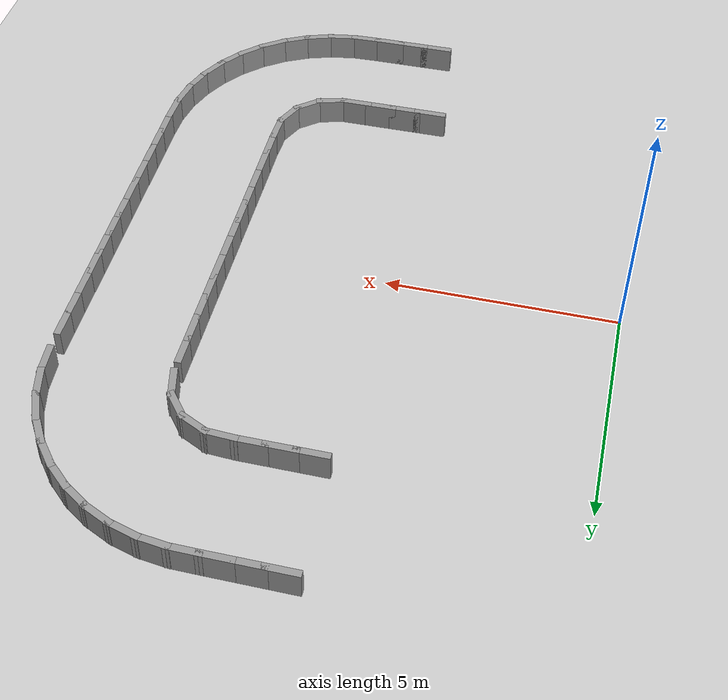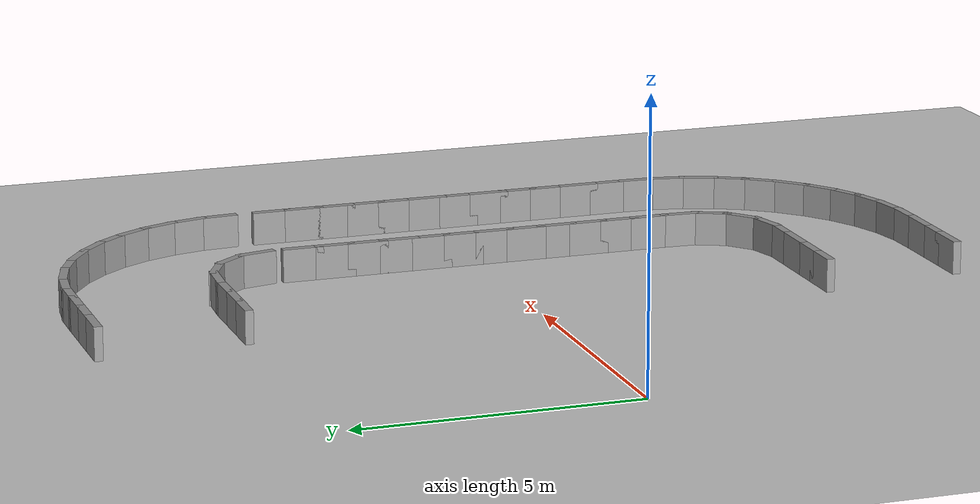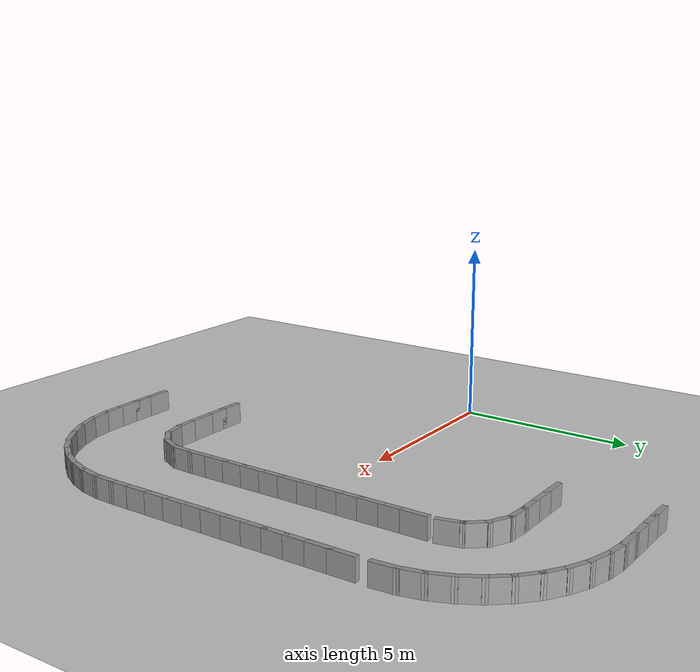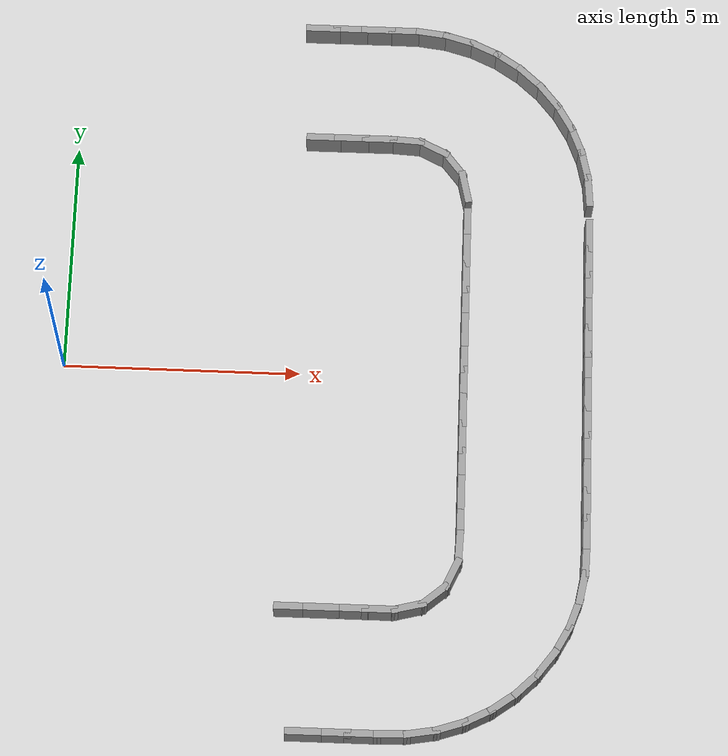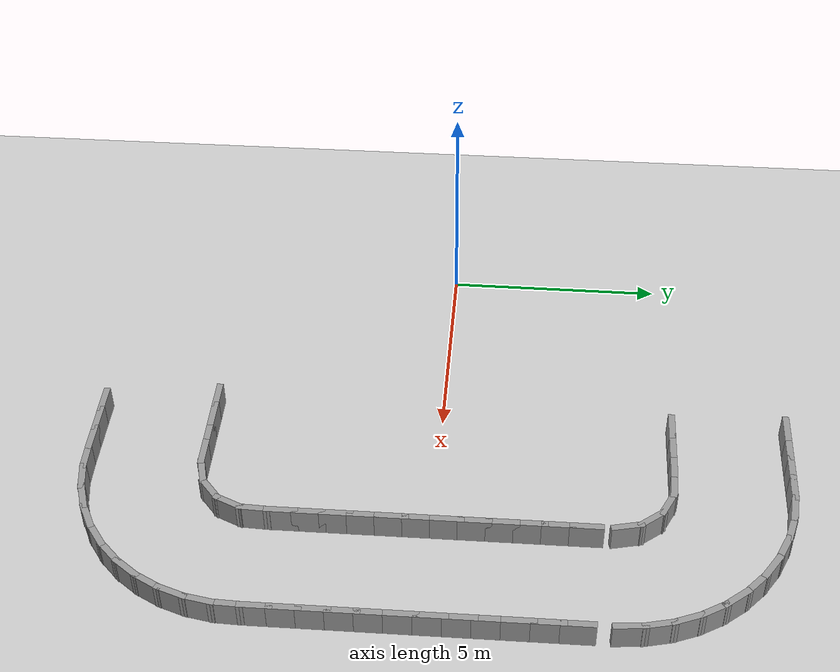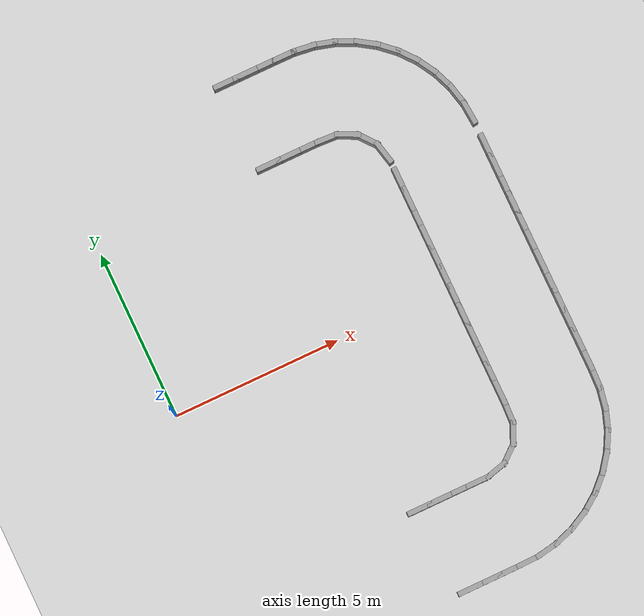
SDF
<sdf version="1.7">
 <world name="default">
  <model name="ground_plane">
   <static>1</static>
   <link name="link">
    <collision name="collision">
     <geometry><plane><normal>0 0 1</normal><size>100 100</size></plane></geometry>
     <surface><friction><ode><mu>100</mu><mu2>50</mu2></ode></friction></surface>
    </collision>
    <visual name="visual">
     <cast_shadows>0</cast_shadows>
     <geometry><plane><normal>0 0 1</normal><size>100 100</size></plane></geometry>
     <material>
      <script><uri>file://media/materials/scripts/gazebo.material</uri><name>Gazebo/Grey</name></script>
     </material>
    </visual>
   </link>
  </model>
  <model name="rand_rrect_02">
   <link name="Wall_0">
    <collision name="Wall_0_Collision">
     <geometry><box><size>0.7450 0.1500 0.6000</size></box></geometry>
     <pose>0 0 0.3000 0 -0 0</pose>
    </collision>
    <visual name="Wall_0_Visual">
     <pose>0 0 0.3000 0 -0 0</pose>
     <geometry><box><size>0.7450 0.1500 0.6000</size></box></geometry>
     <material>
      <script><uri>file://media/materials/scripts/gazebo.material</uri><name>Gazebo/Grey</name></script>
      <ambient>1 1 1 1</ambient>
     </material>
    </visual>
    <pose>8.3819 4.1988 0 0 -0 1.79474</pose>
   </link>
   <link name="Wall_1">
    <collision name="Wall_1_Collision">
     <geometry><box><size>0.7450 0.1500 0.6000</size></box></geometry>
     <pose>0 0 0.3000 0 -0 0</pose>
    </collision>
    <visual name="Wall_1_Visual">
     <pose>0 0 0.3000 0 -0 0</pose>
     <geometry><box><size>0.7450 0.1500 0.6000</size></box></geometry>
     <material>
      <script><uri>file://media/materials/scripts/gazebo.material</uri><name>Gazebo/Grey</name></script>
      <ambient>1 1 1 1</ambient>
     </material>
    </visual>
    <pose>8.1306 4.7217 0 0 -0 2.24261</pose>
   </link>
   <link name="Wall_2">
    <collision name="Wall_2_Collision">
     <geometry><box><size>0.7450 0.1500 0.6000</size></box></geometry>
     <pose>0 0 0.3000 0 -0 0</pose>
    </collision>
    <visual name="Wall_2_Visual">
     <pose>0 0 0.3000 0 -0 0</pose>
     <geometry><box><size>0.7450 0.1500 0.6000</size></box></geometry>
     <material>
      <script><uri>file://media/materials/scripts/gazebo.material</uri><name>Gazebo/Grey</name></script>
      <ambient>1 1 1 1</ambient>
     </material>
    </visual>
    <pose>7.6777 5.0842 0 0 -0 2.69049</pose>
   </link>
   <link name="Wall_3">
    <collision name="Wall_3_Collision">
     <geometry><box><size>0.7484 0.1500 0.6000</size></box></geometry>
     <pose>0 0 0.3000 0 -0 0</pose>
    </collision>
    <visual name="Wall_3_Visual">
     <pose>0 0 0.3000 0 -0 0</pose>
     <geometry><box><size>0.7484 0.1500 0.6000</size></box></geometry>
     <material>
      <script><uri>file://media/materials/scripts/gazebo.material</uri><name>Gazebo/Grey</name></script>
      <ambient>1 1 1 1</ambient>
     </material>
    </visual>
    <pose>7.1113 5.2311 0 0 -0 3.08404</pose>
   </link>
   <link name="Wall_4">
    <collision name="Wall_4_Collision">
     <geometry><box><size>0.7500 0.1500 0.6000</size></box></geometry>
     <pose>0 0 0.3000 0 -0 0</pose>
    </collision>
    <visual name="Wall_4_Visual">
     <pose>0 0 0.3000 0 -0 0</pose>
     <geometry><box><size>0.7500 0.1500 0.6000</size></box></geometry>
     <material>
      <script><uri>file://media/materials/scripts/gazebo.material</uri><name>Gazebo/Grey</name></script>
      <ambient>1 1 1 1</ambient>
     </material>
    </visual>
    <pose>6.5126 5.2483 0 0 -0 3.14159</pose>
   </link>
   <link name="Wall_5">
    <collision name="Wall_5_Collision">
     <geometry><box><size>0.7500 0.1500 0.6000</size></box></geometry>
     <pose>0 0 0.3000 0 -0 0</pose>
    </collision>
    <visual name="Wall_5_Visual">
     <pose>0 0 0.3000 0 -0 0</pose>
     <geometry><box><size>0.7500 0.1500 0.6000</size></box></geometry>
     <material>
      <script><uri>file://media/materials/scripts/gazebo.material</uri><name>Gazebo/Grey</name></script>
      <ambient>1 1 1 1</ambient>
     </material>
    </visual>
    <pose>5.9126 5.2483 0 0 -0 3.14159</pose>
   </link>
   <link name="Wall_6">
    <collision name="Wall_6_Collision">
     <geometry><box><size>0.7500 0.1500 0.6000</size></box></geometry>
     <pose>0 0 0.3000 0 -0 0</pose>
    </collision>
    <visual name="Wall_6_Visual">
     <pose>0 0 0.3000 0 -0 0</pose>
     <geometry><box><size>0.7500 0.1500 0.6000</size></box></geometry>
     <material>
      <script><uri>file://media/materials/scripts/gazebo.material</uri><name>Gazebo/Grey</name></script>
      <ambient>1 1 1 1</ambient>
     </material>
    </visual>
    <pose>5.3126 5.2483 0 0 -0 3.14159</pose>
   </link>
   <link name="Wall_67">
    <collision name="Wall_67_Collision">
     <geometry><box><size>0.7500 0.1500 0.6000</size></box></geometry>
     <pose>0 0 0.3000 0 -0 0</pose>
    </collision>
    <visual name="Wall_67_Visual">
     <pose>0 0 0.3000 0 -0 0</pose>
     <geometry><box><size>0.7500 0.1500 0.6000</size></box></geometry>
     <material>
      <script><uri>file://media/materials/scripts/gazebo.material</uri><name>Gazebo/Grey</name></script>
      <ambient>1 1 1 1</ambient>
     </material>
    </visual>
    <pose>5.0448 -5.2483 0 0 -0 0.00000</pose>
   </link>
   <link name="Wall_68">
    <collision name="Wall_68_Collision">
     <geometry><box><size>0.7500 0.1500 0.6000</size></box></geometry>
     <pose>0 0 0.3000 0 -0 0</pose>
    </collision>
    <visual name="Wall_68_Visual">
     <pose>0 0 0.3000 0 -0 0</pose>
     <geometry><box><size>0.7500 0.1500 0.6000</size></box></geometry>
     <material>
      <script><uri>file://media/materials/scripts/gazebo.material</uri><name>Gazebo/Grey</name></script>
      <ambient>1 1 1 1</ambient>
     </material>
    </visual>
    <pose>5.6448 -5.2483 0 0 -0 0.00000</pose>
   </link>
   <link name="Wall_69">
    <collision name="Wall_69_Collision">
     <geometry><box><size>0.7500 0.1500 0.6000</size></box></geometry>
     <pose>0 0 0.3000 0 -0 0</pose>
    </collision>
    <visual name="Wall_69_Visual">
     <pose>0 0 0.3000 0 -0 0</pose>
     <geometry><box><size>0.7500 0.1500 0.6000</size></box></geometry>
     <material>
      <script><uri>file://media/materials/scripts/gazebo.material</uri><name>Gazebo/Grey</name></script>
      <ambient>1 1 1 1</ambient>
     </material>
    </visual>
    <pose>6.2448 -5.2483 0 0 -0 0.00000</pose>
   </link>
   <link name="Wall_70">
    <collision name="Wall_70_Collision">
     <geometry><box><size>0.7500 0.1500 0.6000</size></box></geometry>
     <pose>0 0 0.3000 0 -0 0</pose>
    </collision>
    <visual name="Wall_70_Visual">
     <pose>0 0 0.3000 0 -0 0</pose>
     <geometry><box><size>0.7500 0.1500 0.6000</size></box></geometry>
     <material>
      <script><uri>file://media/materials/scripts/gazebo.material</uri><name>Gazebo/Grey</name></script>
      <ambient>1 1 1 1</ambient>
     </material>
    </visual>
    <pose>6.8448 -5.2481 0 0 -0 0.00083</pose>
   </link>
   <link name="Wall_71">
    <collision name="Wall_71_Collision">
     <geometry><box><size>0.7450 0.1500 0.6000</size></box></geometry>
     <pose>0 0 0.3000 0 -0 0</pose>
    </collision>
    <visual name="Wall_71_Visual">
     <pose>0 0 0.3000 0 -0 0</pose>
     <geometry><box><size>0.7450 0.1500 0.6000</size></box></geometry>
     <material>
      <script><uri>file://media/materials/scripts/gazebo.material</uri><name>Gazebo/Grey</name></script>
      <ambient>1 1 1 1</ambient>
     </material>
    </visual>
    <pose>7.4329 -5.1739 0 0 -0 0.25118</pose>
   </link>
   <link name="Wall_72">
    <collision name="Wall_72_Collision">
     <geometry><box><size>0.7450 0.1500 0.6000</size></box></geometry>
     <pose>0 0 0.3000 0 -0 0</pose>
    </collision>
    <visual name="Wall_72_Visual">
     <pose>0 0 0.3000 0 -0 0</pose>
     <geometry><box><size>0.7450 0.1500 0.6000</size></box></geometry>
     <material>
      <script><uri>file://media/materials/scripts/gazebo.material</uri><name>Gazebo/Grey</name></script>
      <ambient>1 1 1 1</ambient>
     </material>
    </visual>
    <pose>7.9488 -4.9085 0 0 -0 0.69905</pose>
   </link>
   <link name="Wall_73">
    <collision name="Wall_73_Collision">
     <geometry><box><size>0.7450 0.1500 0.6000</size></box></geometry>
     <pose>0 0 0.3000 0 -0 0</pose>
    </collision>
    <visual name="Wall_73_Visual">
     <pose>0 0 0.3000 0 -0 0</pose>
     <geometry><box><size>0.7450 0.1500 0.6000</size></box></geometry>
     <material>
      <script><uri>file://media/materials/scripts/gazebo.material</uri><name>Gazebo/Grey</name></script>
      <ambient>1 1 1 1</ambient>
     </material>
    </visual>
    <pose>8.2989 -4.4459 0 0 -0 1.14694</pose>
   </link>
   <link name="Wall_74">
    <collision name="Wall_74_Collision">
     <geometry><box><size>0.7488 0.1500 0.6000</size></box></geometry>
     <pose>0 0 0.3000 0 -0 0</pose>
    </collision>
    <visual name="Wall_74_Visual">
     <pose>0 0 0.3000 0 -0 0</pose>
     <geometry><box><size>0.7488 0.1500 0.6000</size></box></geometry>
     <material>
      <script><uri>file://media/materials/scripts/gazebo.material</uri><name>Gazebo/Grey</name></script>
      <ambient>1 1 1 1</ambient>
     </material>
    </visual>
    <pose>8.4346 -3.8756 0 0 -0 1.52622</pose>
   </link>
   <link name="Wall_75">
    <collision name="Wall_75_Collision">
     <geometry><box><size>0.7500 0.1500 0.6000</size></box></geometry>
     <pose>0 0 0.3000 0 -0 0</pose>
    </collision>
    <visual name="Wall_75_Visual">
     <pose>0 0 0.3000 0 -0 0</pose>
     <geometry><box><size>0.7500 0.1500 0.6000</size></box></geometry>
     <material>
      <script><uri>file://media/materials/scripts/gazebo.material</uri><name>Gazebo/Grey</name></script>
      <ambient>1 1 1 1</ambient>
     </material>
    </visual>
    <pose>8.4479 -3.2765 0 0 -0 1.57080</pose>
   </link>
   <link name="Wall_76">
    <collision name="Wall_76_Collision">
     <geometry><box><size>0.7500 0.1500 0.6000</size></box></geometry>
     <pose>0 0 0.3000 0 -0 0</pose>
    </collision>
    <visual name="Wall_76_Visual">
     <pose>0 0 0.3000 0 -0 0</pose>
     <geometry><box><size>0.7500 0.1500 0.6000</size></box></geometry>
     <material>
      <script><uri>file://media/materials/scripts/gazebo.material</uri><name>Gazebo/Grey</name></script>
      <ambient>1 1 1 1</ambient>
     </material>
    </visual>
    <pose>8.4479 -2.6765 0 0 -0 1.57080</pose>
   </link>
   <link name="Wall_77">
    <collision name="Wall_77_Collision">
     <geometry><box><size>0.7500 0.1500 0.6000</size></box></geometry>
     <pose>0 0 0.3000 0 -0 0</pose>
    </collision>
    <visual name="Wall_77_Visual">
     <pose>0 0 0.3000 0 -0 0</pose>
     <geometry><box><size>0.7500 0.1500 0.6000</size></box></geometry>
     <material>
      <script><uri>file://media/materials/scripts/gazebo.material</uri><name>Gazebo/Grey</name></script>
      <ambient>1 1 1 1</ambient>
     </material>
    </visual>
    <pose>8.4479 -2.0765 0 0 -0 1.57080</pose>
   </link>
   <link name="Wall_78">
    <collision name="Wall_78_Collision">
     <geometry><box><size>0.7500 0.1500 0.6000</size></box></geometry>
     <pose>0 0 0.3000 0 -0 0</pose>
    </collision>
    <visual name="Wall_78_Visual">
     <pose>0 0 0.3000 0 -0 0</pose>
     <geometry><box><size>0.7500 0.1500 0.6000</size></box></geometry>
     <material>
      <script><uri>file://media/materials/scripts/gazebo.material</uri><name>Gazebo/Grey</name></script>
      <ambient>1 1 1 1</ambient>
     </material>
    </visual>
    <pose>8.4479 -1.4765 0 0 -0 1.57080</pose>
   </link>
   <link name="Wall_79">
    <collision name="Wall_79_Collision">
     <geometry><box><size>0.7500 0.1500 0.6000</size></box></geometry>
     <pose>0 0 0.3000 0 -0 0</pose>
    </collision>
    <visual name="Wall_79_Visual">
     <pose>0 0 0.3000 0 -0 0</pose>
     <geometry><box><size>0.7500 0.1500 0.6000</size></box></geometry>
     <material>
      <script><uri>file://media/materials/scripts/gazebo.material</uri><name>Gazebo/Grey</name></script>
      <ambient>1 1 1 1</ambient>
     </material>
    </visual>
    <pose>8.4479 -0.8765 0 0 -0 1.57080</pose>
   </link>
   <link name="Wall_80">
    <collision name="Wall_80_Collision">
     <geometry><box><size>0.7500 0.1500 0.6000</size></box></geometry>
     <pose>0 0 0.3000 0 -0 0</pose>
    </collision>
    <visual name="Wall_80_Visual">
     <pose>0 0 0.3000 0 -0 0</pose>
     <geometry><box><size>0.7500 0.1500 0.6000</size></box></geometry>
     <material>
      <script><uri>file://media/materials/scripts/gazebo.material</uri><name>Gazebo/Grey</name></script>
      <ambient>1 1 1 1</ambient>
     </material>
    </visual>
    <pose>8.4479 -0.2765 0 0 -0 1.57080</pose>
   </link>
   <link name="Wall_81">
    <collision name="Wall_81_Collision">
     <geometry><box><size>0.7500 0.1500 0.6000</size></box></geometry>
     <pose>0 0 0.3000 0 -0 0</pose>
    </collision>
    <visual name="Wall_81_Visual">
     <pose>0 0 0.3000 0 -0 0</pose>
     <geometry><box><size>0.7500 0.1500 0.6000</size></box></geometry>
     <material>
      <script><uri>file://media/materials/scripts/gazebo.material</uri><name>Gazebo/Grey</name></script>
      <ambient>1 1 1 1</ambient>
     </material>
    </visual>
    <pose>8.4479 0.3235 0 0 -0 1.57080</pose>
   </link>
   <link name="Wall_82">
    <collision name="Wall_82_Collision">
     <geometry><box><size>0.7500 0.1500 0.6000</size></box></geometry>
     <pose>0 0 0.3000 0 -0 0</pose>
    </collision>
    <visual name="Wall_82_Visual">
     <pose>0 0 0.3000 0 -0 0</pose>
     <geometry><box><size>0.7500 0.1500 0.6000</size></box></geometry>
     <material>
      <script><uri>file://media/materials/scripts/gazebo.material</uri><name>Gazebo/Grey</name></script>
      <ambient>1 1 1 1</ambient>
     </material>
    </visual>
    <pose>8.4479 0.9235 0 0 -0 1.57080</pose>
   </link>
   <link name="Wall_83">
    <collision name="Wall_83_Collision">
     <geometry><box><size>0.7500 0.1500 0.6000</size></box></geometry>
     <pose>0 0 0.3000 0 -0 0</pose>
    </collision>
    <visual name="Wall_83_Visual">
     <pose>0 0 0.3000 0 -0 0</pose>
     <geometry><box><size>0.7500 0.1500 0.6000</size></box></geometry>
     <material>
      <script><uri>file://media/materials/scripts/gazebo.material</uri><name>Gazebo/Grey</name></script>
      <ambient>1 1 1 1</ambient>
     </material>
    </visual>
    <pose>8.4479 1.5235 0 0 -0 1.57080</pose>
   </link>
   <link name="Wall_84">
    <collision name="Wall_84_Collision">
     <geometry><box><size>0.7500 0.1500 0.6000</size></box></geometry>
     <pose>0 0 0.3000 0 -0 0</pose>
    </collision>
    <visual name="Wall_84_Visual">
     <pose>0 0 0.3000 0 -0 0</pose>
     <geometry><box><size>0.7500 0.1500 0.6000</size></box></geometry>
     <material>
      <script><uri>file://media/materials/scripts/gazebo.material</uri><name>Gazebo/Grey</name></script>
      <ambient>1 1 1 1</ambient>
     </material>
    </visual>
    <pose>8.4479 2.1235 0 0 -0 1.57080</pose>
   </link>
   <link name="Wall_85">
    <collision name="Wall_85_Collision">
     <geometry><box><size>0.7500 0.1500 0.6000</size></box></geometry>
     <pose>0 0 0.3000 0 -0 0</pose>
    </collision>
    <visual name="Wall_85_Visual">
     <pose>0 0 0.3000 0 -0 0</pose>
     <geometry><box><size>0.7500 0.1500 0.6000</size></box></geometry>
     <material>
      <script><uri>file://media/materials/scripts/gazebo.material</uri><name>Gazebo/Grey</name></script>
      <ambient>1 1 1 1</ambient>
     </material>
    </visual>
    <pose>8.4479 2.7235 0 0 -0 1.57080</pose>
   </link>
   <link name="Wall_86">
    <collision name="Wall_86_Collision">
     <geometry><box><size>0.7500 0.1500 0.6000</size></box></geometry>
     <pose>0 0 0.3000 0 -0 0</pose>
    </collision>
    <visual name="Wall_86_Visual">
     <pose>0 0 0.3000 0 -0 0</pose>
     <geometry><box><size>0.7500 0.1500 0.6000</size></box></geometry>
     <material>
      <script><uri>file://media/materials/scripts/gazebo.material</uri><name>Gazebo/Grey</name></script>
      <ambient>1 1 1 1</ambient>
     </material>
    </visual>
    <pose>8.4479 3.3235 0 0 -0 1.57080</pose>
   </link>
   <link name="Wall_87">
    <collision name="Wall_87_Collision">
     <geometry><box><size>0.7494 0.1500 0.6000</size></box></geometry>
     <pose>0 0 0.3000 0 -0 0</pose>
    </collision>
    <visual name="Wall_87_Visual">
     <pose>0 0 0.3000 0 -0 0</pose>
     <geometry><box><size>0.7494 0.1500 0.6000</size></box></geometry>
     <material>
      <script><uri>file://media/materials/scripts/gazebo.material</uri><name>Gazebo/Grey</name></script>
      <ambient>1 1 1 1</ambient>
     </material>
    </visual>
    <pose>11.0292 4.2075 0 0 -0 1.64688</pose>
   </link>
   <link name="Wall_88">
    <collision name="Wall_88_Collision">
     <geometry><box><size>0.7494 0.1500 0.6000</size></box></geometry>
     <pose>0 0 0.3000 0 -0 0</pose>
    </collision>
    <visual name="Wall_88_Visual">
     <pose>0 0 0.3000 0 -0 0</pose>
     <geometry><box><size>0.7494 0.1500 0.6000</size></box></geometry>
     <material>
      <script><uri>file://media/materials/scripts/gazebo.material</uri><name>Gazebo/Grey</name></script>
      <ambient>1 1 1 1</ambient>
     </material>
    </visual>
    <pose>10.9387 4.7983 0 0 -0 1.79901</pose>
   </link>
   <link name="Wall_89">
    <collision name="Wall_89_Collision">
     <geometry><box><size>0.7494 0.1500 0.6000</size></box></geometry>
     <pose>0 0 0.3000 0 -0 0</pose>
    </collision>
    <visual name="Wall_89_Visual">
     <pose>0 0 0.3000 0 -0 0</pose>
     <geometry><box><size>0.7494 0.1500 0.6000</size></box></geometry>
     <material>
      <script><uri>file://media/materials/scripts/gazebo.material</uri><name>Gazebo/Grey</name></script>
      <ambient>1 1 1 1</ambient>
     </material>
    </visual>
    <pose>10.7596 5.3685 0 0 -0 1.95115</pose>
   </link>
   <link name="Wall_90">
    <collision name="Wall_90_Collision">
     <geometry><box><size>0.7494 0.1500 0.6000</size></box></geometry>
     <pose>0 0 0.3000 0 -0 0</pose>
    </collision>
    <visual name="Wall_90_Visual">
     <pose>0 0 0.3000 0 -0 0</pose>
     <geometry><box><size>0.7494 0.1500 0.6000</size></box></geometry>
     <material>
      <script><uri>file://media/materials/scripts/gazebo.material</uri><name>Gazebo/Grey</name></script>
      <ambient>1 1 1 1</ambient>
     </material>
    </visual>
    <pose>10.4962 5.9051 0 0 -0 2.10328</pose>
   </link>
   <link name="Wall_91">
    <collision name="Wall_91_Collision">
     <geometry><box><size>0.7494 0.1500 0.6000</size></box></geometry>
     <pose>0 0 0.3000 0 -0 0</pose>
    </collision>
    <visual name="Wall_91_Visual">
     <pose>0 0 0.3000 0 -0 0</pose>
     <geometry><box><size>0.7494 0.1500 0.6000</size></box></geometry>
     <material>
      <script><uri>file://media/materials/scripts/gazebo.material</uri><name>Gazebo/Grey</name></script>
      <ambient>1 1 1 1</ambient>
     </material>
    </visual>
    <pose>10.1545 6.3954 0 0 -0 2.25542</pose>
   </link>
   <link name="Wall_92">
    <collision name="Wall_92_Collision">
     <geometry><box><size>0.7494 0.1500 0.6000</size></box></geometry>
     <pose>0 0 0.3000 0 -0 0</pose>
    </collision>
    <visual name="Wall_92_Visual">
     <pose>0 0 0.3000 0 -0 0</pose>
     <geometry><box><size>0.7494 0.1500 0.6000</size></box></geometry>
     <material>
      <script><uri>file://media/materials/scripts/gazebo.material</uri><name>Gazebo/Grey</name></script>
      <ambient>1 1 1 1</ambient>
     </material>
    </visual>
    <pose>9.7424 6.8284 0 0 -0 2.40758</pose>
   </link>
   <link name="Wall_93">
    <collision name="Wall_93_Collision">
     <geometry><box><size>0.7494 0.1500 0.6000</size></box></geometry>
     <pose>0 0 0.3000 0 -0 0</pose>
    </collision>
    <visual name="Wall_93_Visual">
     <pose>0 0 0.3000 0 -0 0</pose>
     <geometry><box><size>0.7494 0.1500 0.6000</size></box></geometry>
     <material>
      <script><uri>file://media/materials/scripts/gazebo.material</uri><name>Gazebo/Grey</name></script>
      <ambient>1 1 1 1</ambient>
     </material>
    </visual>
    <pose>9.2695 7.1939 0 0 -0 2.55971</pose>
   </link>
   <link name="Wall_94">
    <collision name="Wall_94_Collision">
     <geometry><box><size>0.7494 0.1500 0.6000</size></box></geometry>
     <pose>0 0 0.3000 0 -0 0</pose>
    </collision>
    <visual name="Wall_94_Visual">
     <pose>0 0 0.3000 0 -0 0</pose>
     <geometry><box><size>0.7494 0.1500 0.6000</size></box></geometry>
     <material>
      <script><uri>file://media/materials/scripts/gazebo.material</uri><name>Gazebo/Grey</name></script>
      <ambient>1 1 1 1</ambient>
     </material>
    </visual>
    <pose>8.7466 7.4834 0 0 -0 2.71185</pose>
   </link>
   <link name="Wall_95">
    <collision name="Wall_95_Collision">
     <geometry><box><size>0.7494 0.1500 0.6000</size></box></geometry>
     <pose>0 0 0.3000 0 -0 0</pose>
    </collision>
    <visual name="Wall_95_Visual">
     <pose>0 0 0.3000 0 -0 0</pose>
     <geometry><box><size>0.7494 0.1500 0.6000</size></box></geometry>
     <material>
      <script><uri>file://media/materials/scripts/gazebo.material</uri><name>Gazebo/Grey</name></script>
      <ambient>1 1 1 1</ambient>
     </material>
    </visual>
    <pose>8.1860 7.6905 0 0 -0 2.86398</pose>
   </link>
   <link name="Wall_96">
    <collision name="Wall_96_Collision">
     <geometry><box><size>0.7494 0.1500 0.6000</size></box></geometry>
     <pose>0 0 0.3000 0 -0 0</pose>
    </collision>
    <visual name="Wall_96_Visual">
     <pose>0 0 0.3000 0 -0 0</pose>
     <geometry><box><size>0.7494 0.1500 0.6000</size></box></geometry>
     <material>
      <script><uri>file://media/materials/scripts/gazebo.material</uri><name>Gazebo/Grey</name></script>
      <ambient>1 1 1 1</ambient>
     </material>
    </visual>
    <pose>7.6004 7.8101 0 0 -0 3.01612</pose>
   </link>
   <link name="Wall_97">
    <collision name="Wall_97_Collision">
     <geometry><box><size>0.7499 0.1500 0.6000</size></box></geometry>
     <pose>0 0 0.3000 0 -0 0</pose>
    </collision>
    <visual name="Wall_97_Visual">
     <pose>0 0 0.3000 0 -0 0</pose>
     <geometry><box><size>0.7499 0.1500 0.6000</size></box></geometry>
     <material>
      <script><uri>file://media/materials/scripts/gazebo.material</uri><name>Gazebo/Grey</name></script>
      <ambient>1 1 1 1</ambient>
     </material>
    </visual>
    <pose>7.0030 7.8500 0 0 -0 3.13357</pose>
   </link>
   <link name="Wall_98">
    <collision name="Wall_98_Collision">
     <geometry><box><size>0.7500 0.1500 0.6000</size></box></geometry>
     <pose>0 0 0.3000 0 -0 0</pose>
    </collision>
    <visual name="Wall_98_Visual">
     <pose>0 0 0.3000 0 -0 0</pose>
     <geometry><box><size>0.7500 0.1500 0.6000</size></box></geometry>
     <material>
      <script><uri>file://media/materials/scripts/gazebo.material</uri><name>Gazebo/Grey</name></script>
      <ambient>1 1 1 1</ambient>
     </material>
    </visual>
    <pose>6.4031 7.8524 0 0 -0 3.14159</pose>
   </link>
   <link name="Wall_99">
    <collision name="Wall_99_Collision">
     <geometry><box><size>0.7500 0.1500 0.6000</size></box></geometry>
     <pose>0 0 0.3000 0 -0 0</pose>
    </collision>
    <visual name="Wall_99_Visual">
     <pose>0 0 0.3000 0 -0 0</pose>
     <geometry><box><size>0.7500 0.1500 0.6000</size></box></geometry>
     <material>
      <script><uri>file://media/materials/scripts/gazebo.material</uri><name>Gazebo/Grey</name></script>
      <ambient>1 1 1 1</ambient>
     </material>
    </visual>
    <pose>5.8031 7.8524 0 0 -0 3.14159</pose>
   </link>
   <link name="Wall_100">
    <collision name="Wall_100_Collision">
     <geometry><box><size>0.7500 0.1500 0.6000</size></box></geometry>
     <pose>0 0 0.3000 0 -0 0</pose>
    </collision>
    <visual name="Wall_100_Visual">
     <pose>0 0 0.3000 0 -0 0</pose>
     <geometry><box><size>0.7500 0.1500 0.6000</size></box></geometry>
     <material>
      <script><uri>file://media/materials/scripts/gazebo.material</uri><name>Gazebo/Grey</name></script>
      <ambient>1 1 1 1</ambient>
     </material>
    </visual>
    <pose>5.2031 7.8524 0 0 -0 3.14159</pose>
   </link>
   <link name="Wall_175">
    <collision name="Wall_175_Collision">
     <geometry><box><size>0.7500 0.1500 0.6000</size></box></geometry>
     <pose>0 0 0.3000 0 -0 0</pose>
    </collision>
    <visual name="Wall_175_Visual">
     <pose>0 0 0.3000 0 -0 0</pose>
     <geometry><box><size>0.7500 0.1500 0.6000</size></box></geometry>
     <material>
      <script><uri>file://media/materials/scripts/gazebo.material</uri><name>Gazebo/Grey</name></script>
      <ambient>1 1 1 1</ambient>
     </material>
    </visual>
    <pose>5.3734 -7.8524 0 0 -0 0.00000</pose>
   </link>
   <link name="Wall_176">
    <collision name="Wall_176_Collision">
     <geometry><box><size>0.7500 0.1500 0.6000</size></box></geometry>
     <pose>0 0 0.3000 0 -0 0</pose>
    </collision>
    <visual name="Wall_176_Visual">
     <pose>0 0 0.3000 0 -0 0</pose>
     <geometry><box><size>0.7500 0.1500 0.6000</size></box></geometry>
     <material>
      <script><uri>file://media/materials/scripts/gazebo.material</uri><name>Gazebo/Grey</name></script>
      <ambient>1 1 1 1</ambient>
     </material>
    </visual>
    <pose>5.9734 -7.8524 0 0 -0 0.00000</pose>
   </link>
   <link name="Wall_177">
    <collision name="Wall_177_Collision">
     <geometry><box><size>0.7500 0.1500 0.6000</size></box></geometry>
     <pose>0 0 0.3000 0 -0 0</pose>
    </collision>
    <visual name="Wall_177_Visual">
     <pose>0 0 0.3000 0 -0 0</pose>
     <geometry><box><size>0.7500 0.1500 0.6000</size></box></geometry>
     <material>
      <script><uri>file://media/materials/scripts/gazebo.material</uri><name>Gazebo/Grey</name></script>
      <ambient>1 1 1 1</ambient>
     </material>
    </visual>
    <pose>6.5734 -7.8524 0 0 -0 0.00000</pose>
   </link>
   <link name="Wall_178">
    <collision name="Wall_178_Collision">
     <geometry><box><size>0.7497 0.1500 0.6000</size></box></geometry>
     <pose>0 0 0.3000 0 -0 0</pose>
    </collision>
    <visual name="Wall_178_Visual">
     <pose>0 0 0.3000 0 -0 0</pose>
     <geometry><box><size>0.7497 0.1500 0.6000</size></box></geometry>
     <material>
      <script><uri>file://media/materials/scripts/gazebo.material</uri><name>Gazebo/Grey</name></script>
      <ambient>1 1 1 1</ambient>
     </material>
    </visual>
    <pose>7.1731 -7.8440 0 0 -0 0.02817</pose>
   </link>
   <link name="Wall_179">
    <collision name="Wall_179_Collision">
     <geometry><box><size>0.7494 0.1500 0.6000</size></box></geometry>
     <pose>0 0 0.3000 0 -0 0</pose>
    </collision>
    <visual name="Wall_179_Visual">
     <pose>0 0 0.3000 0 -0 0</pose>
     <geometry><box><size>0.7494 0.1500 0.6000</size></box></geometry>
     <material>
      <script><uri>file://media/materials/scripts/gazebo.material</uri><name>Gazebo/Grey</name></script>
      <ambient>1 1 1 1</ambient>
     </material>
    </visual>
    <pose>7.7683 -7.7852 0 0 -0 0.16864</pose>
   </link>
   <link name="Wall_180">
    <collision name="Wall_180_Collision">
     <geometry><box><size>0.7494 0.1500 0.6000</size></box></geometry>
     <pose>0 0 0.3000 0 -0 0</pose>
    </collision>
    <visual name="Wall_180_Visual">
     <pose>0 0 0.3000 0 -0 0</pose>
     <geometry><box><size>0.7494 0.1500 0.6000</size></box></geometry>
     <material>
      <script><uri>file://media/materials/scripts/gazebo.material</uri><name>Gazebo/Grey</name></script>
      <ambient>1 1 1 1</ambient>
     </material>
    </visual>
    <pose>8.3482 -7.6404 0 0 -0 0.32077</pose>
   </link>
   <link name="Wall_181">
    <collision name="Wall_181_Collision">
     <geometry><box><size>0.7494 0.1500 0.6000</size></box></geometry>
     <pose>0 0 0.3000 0 -0 0</pose>
    </collision>
    <visual name="Wall_181_Visual">
     <pose>0 0 0.3000 0 -0 0</pose>
     <geometry><box><size>0.7494 0.1500 0.6000</size></box></geometry>
     <material>
      <script><uri>file://media/materials/scripts/gazebo.material</uri><name>Gazebo/Grey</name></script>
      <ambient>1 1 1 1</ambient>
     </material>
    </visual>
    <pose>8.8994 -7.4094 0 0 -0 0.47291</pose>
   </link>
   <link name="Wall_182">
    <collision name="Wall_182_Collision">
     <geometry><box><size>0.7494 0.1500 0.6000</size></box></geometry>
     <pose>0 0 0.3000 0 -0 0</pose>
    </collision>
    <visual name="Wall_182_Visual">
     <pose>0 0 0.3000 0 -0 0</pose>
     <geometry><box><size>0.7494 0.1500 0.6000</size></box></geometry>
     <material>
      <script><uri>file://media/materials/scripts/gazebo.material</uri><name>Gazebo/Grey</name></script>
      <ambient>1 1 1 1</ambient>
     </material>
    </visual>
    <pose>9.4093 -7.0975 0 0 -0 0.62507</pose>
   </link>
   <link name="Wall_183">
    <collision name="Wall_183_Collision">
     <geometry><box><size>0.7494 0.1500 0.6000</size></box></geometry>
     <pose>0 0 0.3000 0 -0 0</pose>
    </collision>
    <visual name="Wall_183_Visual">
     <pose>0 0 0.3000 0 -0 0</pose>
     <geometry><box><size>0.7494 0.1500 0.6000</size></box></geometry>
     <material>
      <script><uri>file://media/materials/scripts/gazebo.material</uri><name>Gazebo/Grey</name></script>
      <ambient>1 1 1 1</ambient>
     </material>
    </visual>
    <pose>9.8660 -6.7120 0 0 -0 0.77720</pose>
   </link>
   <link name="Wall_184">
    <collision name="Wall_184_Collision">
     <geometry><box><size>0.7494 0.1500 0.6000</size></box></geometry>
     <pose>0 0 0.3000 0 -0 0</pose>
    </collision>
    <visual name="Wall_184_Visual">
     <pose>0 0 0.3000 0 -0 0</pose>
     <geometry><box><size>0.7494 0.1500 0.6000</size></box></geometry>
     <material>
      <script><uri>file://media/materials/scripts/gazebo.material</uri><name>Gazebo/Grey</name></script>
      <ambient>1 1 1 1</ambient>
     </material>
    </visual>
    <pose>10.2590 -6.2616 0 0 -0 0.92934</pose>
   </link>
   <link name="Wall_185">
    <collision name="Wall_185_Collision">
     <geometry><box><size>0.7494 0.1500 0.6000</size></box></geometry>
     <pose>0 0 0.3000 0 -0 0</pose>
    </collision>
    <visual name="Wall_185_Visual">
     <pose>0 0 0.3000 0 -0 0</pose>
     <geometry><box><size>0.7494 0.1500 0.6000</size></box></geometry>
     <material>
      <script><uri>file://media/materials/scripts/gazebo.material</uri><name>Gazebo/Grey</name></script>
      <ambient>1 1 1 1</ambient>
     </material>
    </visual>
    <pose>10.5792 -5.7570 0 0 -0 1.08147</pose>
   </link>
   <link name="Wall_186">
    <collision name="Wall_186_Collision">
     <geometry><box><size>0.7494 0.1500 0.6000</size></box></geometry>
     <pose>0 0 0.3000 0 -0 0</pose>
    </collision>
    <visual name="Wall_186_Visual">
     <pose>0 0 0.3000 0 -0 0</pose>
     <geometry><box><size>0.7494 0.1500 0.6000</size></box></geometry>
     <material>
      <script><uri>file://media/materials/scripts/gazebo.material</uri><name>Gazebo/Grey</name></script>
      <ambient>1 1 1 1</ambient>
     </material>
    </visual>
    <pose>10.8192 -5.2096 0 0 -0 1.23361</pose>
   </link>
   <link name="Wall_187">
    <collision name="Wall_187_Collision">
     <geometry><box><size>0.7494 0.1500 0.6000</size></box></geometry>
     <pose>0 0 0.3000 0 -0 0</pose>
    </collision>
    <visual name="Wall_187_Visual">
     <pose>0 0 0.3000 0 -0 0</pose>
     <geometry><box><size>0.7494 0.1500 0.6000</size></box></geometry>
     <material>
      <script><uri>file://media/materials/scripts/gazebo.material</uri><name>Gazebo/Grey</name></script>
      <ambient>1 1 1 1</ambient>
     </material>
    </visual>
    <pose>10.9735 -4.6322 0 0 -0 1.38577</pose>
   </link>
   <link name="Wall_188">
    <collision name="Wall_188_Collision">
     <geometry><box><size>0.7496 0.1500 0.6000</size></box></geometry>
     <pose>0 0 0.3000 0 -0 0</pose>
    </collision>
    <visual name="Wall_188_Visual">
     <pose>0 0 0.3000 0 -0 0</pose>
     <geometry><box><size>0.7496 0.1500 0.6000</size></box></geometry>
     <material>
      <script><uri>file://media/materials/scripts/gazebo.material</uri><name>Gazebo/Grey</name></script>
      <ambient>1 1 1 1</ambient>
     </material>
    </visual>
    <pose>11.0403 -4.0380 0 0 -0 1.53177</pose>
   </link>
   <link name="Wall_189">
    <collision name="Wall_189_Collision">
     <geometry><box><size>0.7500 0.1500 0.6000</size></box></geometry>
     <pose>0 0 0.3000 0 -0 0</pose>
    </collision>
    <visual name="Wall_189_Visual">
     <pose>0 0 0.3000 0 -0 0</pose>
     <geometry><box><size>0.7500 0.1500 0.6000</size></box></geometry>
     <material>
      <script><uri>file://media/materials/scripts/gazebo.material</uri><name>Gazebo/Grey</name></script>
      <ambient>1 1 1 1</ambient>
     </material>
    </visual>
    <pose>11.0520 -3.4384 0 0 -0 1.57080</pose>
   </link>
   <link name="Wall_190">
    <collision name="Wall_190_Collision">
     <geometry><box><size>0.7500 0.1500 0.6000</size></box></geometry>
     <pose>0 0 0.3000 0 -0 0</pose>
    </collision>
    <visual name="Wall_190_Visual">
     <pose>0 0 0.3000 0 -0 0</pose>
     <geometry><box><size>0.7500 0.1500 0.6000</size></box></geometry>
     <material>
      <script><uri>file://media/materials/scripts/gazebo.material</uri><name>Gazebo/Grey</name></script>
      <ambient>1 1 1 1</ambient>
     </material>
    </visual>
    <pose>11.0520 -2.8384 0 0 -0 1.57080</pose>
   </link>
   <link name="Wall_191">
    <collision name="Wall_191_Collision">
     <geometry><box><size>0.7500 0.1500 0.6000</size></box></geometry>
     <pose>0 0 0.3000 0 -0 0</pose>
    </collision>
    <visual name="Wall_191_Visual">
     <pose>0 0 0.3000 0 -0 0</pose>
     <geometry><box><size>0.7500 0.1500 0.6000</size></box></geometry>
     <material>
      <script><uri>file://media/materials/scripts/gazebo.material</uri><name>Gazebo/Grey</name></script>
      <ambient>1 1 1 1</ambient>
     </material>
    </visual>
    <pose>11.0520 -2.2384 0 0 -0 1.57080</pose>
   </link>
   <link name="Wall_192">
    <collision name="Wall_192_Collision">
     <geometry><box><size>0.7500 0.1500 0.6000</size></box></geometry>
     <pose>0 0 0.3000 0 -0 0</pose>
    </collision>
    <visual name="Wall_192_Visual">
     <pose>0 0 0.3000 0 -0 0</pose>
     <geometry><box><size>0.7500 0.1500 0.6000</size></box></geometry>
     <material>
      <script><uri>file://media/materials/scripts/gazebo.material</uri><name>Gazebo/Grey</name></script>
      <ambient>1 1 1 1</ambient>
     </material>
    </visual>
    <pose>11.0520 -1.6384 0 0 -0 1.57080</pose>
   </link>
   <link name="Wall_193">
    <collision name="Wall_193_Collision">
     <geometry><box><size>0.7500 0.1500 0.6000</size></box></geometry>
     <pose>0 0 0.3000 0 -0 0</pose>
    </collision>
    <visual name="Wall_193_Visual">
     <pose>0 0 0.3000 0 -0 0</pose>
     <geometry><box><size>0.7500 0.1500 0.6000</size></box></geometry>
     <material>
      <script><uri>file://media/materials/scripts/gazebo.material</uri><name>Gazebo/Grey</name></script>
      <ambient>1 1 1 1</ambient>
     </material>
    </visual>
    <pose>11.0520 -1.0384 0 0 -0 1.57080</pose>
   </link>
   <link name="Wall_194">
    <collision name="Wall_194_Collision">
     <geometry><box><size>0.7500 0.1500 0.6000</size></box></geometry>
     <pose>0 0 0.3000 0 -0 0</pose>
    </collision>
    <visual name="Wall_194_Visual">
     <pose>0 0 0.3000 0 -0 0</pose>
     <geometry><box><size>0.7500 0.1500 0.6000</size></box></geometry>
     <material>
      <script><uri>file://media/materials/scripts/gazebo.material</uri><name>Gazebo/Grey</name></script>
      <ambient>1 1 1 1</ambient>
     </material>
    </visual>
    <pose>11.0520 -0.4384 0 0 -0 1.57080</pose>
   </link>
   <link name="Wall_195">
    <collision name="Wall_195_Collision">
     <geometry><box><size>0.7500 0.1500 0.6000</size></box></geometry>
     <pose>0 0 0.3000 0 -0 0</pose>
    </collision>
    <visual name="Wall_195_Visual">
     <pose>0 0 0.3000 0 -0 0</pose>
     <geometry><box><size>0.7500 0.1500 0.6000</size></box></geometry>
     <material>
      <script><uri>file://media/materials/scripts/gazebo.material</uri><name>Gazebo/Grey</name></script>
      <ambient>1 1 1 1</ambient>
     </material>
    </visual>
    <pose>11.0520 0.1616 0 0 -0 1.57080</pose>
   </link>
   <link name="Wall_196">
    <collision name="Wall_196_Collision">
     <geometry><box><size>0.7500 0.1500 0.6000</size></box></geometry>
     <pose>0 0 0.3000 0 -0 0</pose>
    </collision>
    <visual name="Wall_196_Visual">
     <pose>0 0 0.3000 0 -0 0</pose>
     <geometry><box><size>0.7500 0.1500 0.6000</size></box></geometry>
     <material>
      <script><uri>file://media/materials/scripts/gazebo.material</uri><name>Gazebo/Grey</name></script>
      <ambient>1 1 1 1</ambient>
     </material>
    </visual>
    <pose>11.0520 0.7616 0 0 -0 1.57080</pose>
   </link>
   <link name="Wall_197">
    <collision name="Wall_197_Collision">
     <geometry><box><size>0.7500 0.1500 0.6000</size></box></geometry>
     <pose>0 0 0.3000 0 -0 0</pose>
    </collision>
    <visual name="Wall_197_Visual">
     <pose>0 0 0.3000 0 -0 0</pose>
     <geometry><box><size>0.7500 0.1500 0.6000</size></box></geometry>
     <material>
      <script><uri>file://media/materials/scripts/gazebo.material</uri><name>Gazebo/Grey</name></script>
      <ambient>1 1 1 1</ambient>
     </material>
    </visual>
    <pose>11.0520 1.3616 0 0 -0 1.57080</pose>
   </link>
   <link name="Wall_198">
    <collision name="Wall_198_Collision">
     <geometry><box><size>0.7500 0.1500 0.6000</size></box></geometry>
     <pose>0 0 0.3000 0 -0 0</pose>
    </collision>
    <visual name="Wall_198_Visual">
     <pose>0 0 0.3000 0 -0 0</pose>
     <geometry><box><size>0.7500 0.1500 0.6000</size></box></geometry>
     <material>
      <script><uri>file://media/materials/scripts/gazebo.material</uri><name>Gazebo/Grey</name></script>
      <ambient>1 1 1 1</ambient>
     </material>
    </visual>
    <pose>11.0520 1.9616 0 0 -0 1.57080</pose>
   </link>
   <link name="Wall_199">
    <collision name="Wall_199_Collision">
     <geometry><box><size>0.7500 0.1500 0.6000</size></box></geometry>
     <pose>0 0 0.3000 0 -0 0</pose>
    </collision>
    <visual name="Wall_199_Visual">
     <pose>0 0 0.3000 0 -0 0</pose>
     <geometry><box><size>0.7500 0.1500 0.6000</size></box></geometry>
     <material>
      <script><uri>file://media/materials/scripts/gazebo.material</uri><name>Gazebo/Grey</name></script>
      <ambient>1 1 1 1</ambient>
     </material>
    </visual>
    <pose>11.0520 2.5616 0 0 -0 1.57080</pose>
   </link>
   <link name="Wall_200">
    <collision name="Wall_200_Collision">
     <geometry><box><size>0.7500 0.1500 0.6000</size></box></geometry>
     <pose>0 0 0.3000 0 -0 0</pose>
    </collision>
    <visual name="Wall_200_Visual">
     <pose>0 0 0.3000 0 -0 0</pose>
     <geometry><box><size>0.7500 0.1500 0.6000</size></box></geometry>
     <material>
      <script><uri>file://media/materials/scripts/gazebo.material</uri><name>Gazebo/Grey</name></script>
      <ambient>1 1 1 1</ambient>
     </material>
    </visual>
    <pose>11.0520 3.1616 0 0 -0 1.57080</pose>
   </link>
   <static>1</static>
  </model>
 </world>
</sdf>
